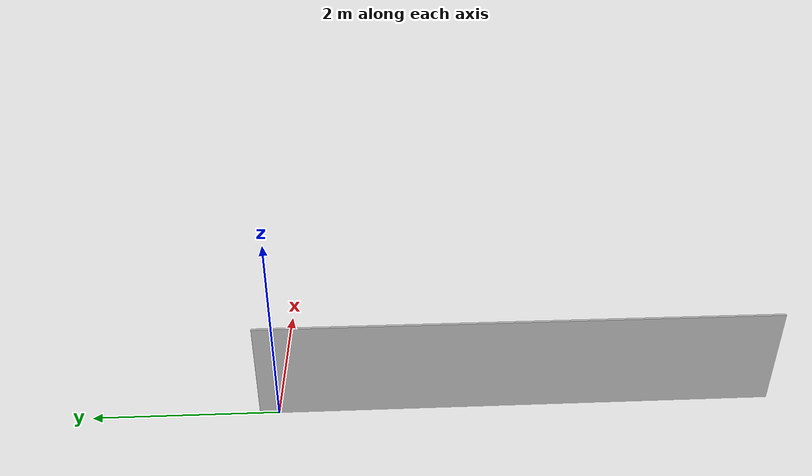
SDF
<?xml version='1.0'?>
<sdf version='1.4'>
    <model name="lattice_large">
        <static>true</static>
	    <link name="link">
		<collision name="collision">
		    <geometry>
			<mesh>
			    <uri>model://lattice_large/meshes/lattice_large.dae</uri>
			</mesh>
		    </geometry>
		</collision>
		<visual name='visual'>
		    <geometry>
			<mesh>
			    <uri>model://lattice_large/meshes/lattice_large.dae</uri>
			</mesh>
		    </geometry>
		</visual>
	    </link>
    </model>
</sdf>
